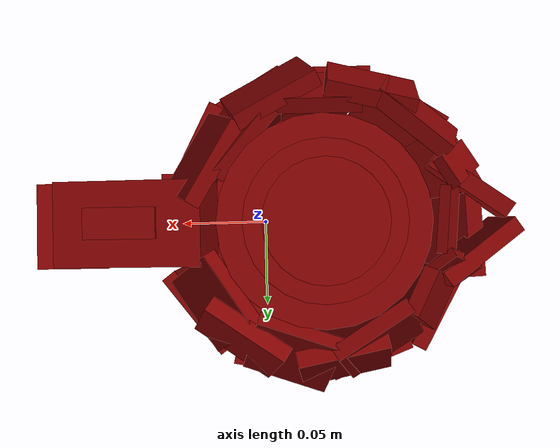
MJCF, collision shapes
<?xml version='1.0' encoding='UTF-8'?>
<mujoco model="model">
  <option timestep="0.002" gravity="0.0 0.0 -9.81"/>
  <compiler angle="radian"/>
  <asset>
    <mesh file="visuals/button_lid.obj" name="button_lid_vis"/>
    <mesh file="visuals/Body001.obj" name="Body001_vis"/>
    <mesh file="visuals/kettle_main.obj" name="kettle_main_vis"/>
    <mesh file="visuals/lid.obj" name="lid_vis"/>
    <mesh file="visuals/switch.obj" name="switch_vis"/>
    <texture file="visuals/T_BC001.png" name="Body001_material" type="2d"/>
    <material name="Body001_material" rgba="1 1 1 1.0" texture="Body001_material" shininess="0.5" specular="0.3103448502657381"/>
    <texture file="visuals/T_BC001.png" name="kettle_main_material" type="2d"/>
    <material name="kettle_main_material" rgba="1 1 1 1.0" texture="kettle_main_material" shininess="0.5" specular="0.3103448502657381"/>
    <texture file="visuals/T_BC001.png" name="button_lid_material" type="2d"/>
    <material name="button_lid_material" rgba="1 1 1 1.0" texture="button_lid_material" shininess="0.5" specular="0.3103448502657381"/>
    <texture file="visuals/T_BC001.png" name="lid_material" type="2d"/>
    <material name="lid_material" rgba="1 1 1 1.0" texture="lid_material" shininess="0.5" specular="0.3103448502657381"/>
    <texture file="visuals/T_BC001.png" name="switch_material" type="2d"/>
    <material name="switch_material" rgba="1 1 1 1.0" texture="switch_material" shininess="0.5" specular="0.3103448502657381"/>
  </asset>
  <default>
    <default class="visual">
      <geom conaffinity="0" contype="0" group="1" type="mesh"/>
    </default>
    <default class="collision">
      <geom group="0" rgba="0.5 0 0 0.5" density="1.0" solref="0.004 1" solimp="0.998 0.998 0.001"/>
    </default>
    <default class="spawn">
      <geom group="0" rgba="1 1 1 0.5" contype="0" conaffinity="0"/>
      <site group="0" rgba="1 1 1 0.5"/>
    </default>
    <default class="region">
      <geom group="1" conaffinity="0" contype="0" rgba="0 1 0 0" mass="0"/>
    </default>
  </default>
  <worldbody>
    <body>
      <body name="object">
        <geom mesh="Body001_vis" type="mesh" solimp="0.998 0.998 0.001" solref="0.001 1" friction="0.95 0.3 0.1" class="visual" material="Body001_material"/>
        <geom type="cylinder" pos="-0.02806802 0.00056461 -0.12007976" size="0.08009783178567886 0.012889089994132519" quat="7.549790126404332e-08 0.0 0.0 -1.0" class="collision"/>
        <body name="kettle_main">
          <geom mesh="kettle_main_vis" type="mesh" solimp="0.998 0.998 0.001" solref="0.001 1" friction="0.95 0.3 0.1" class="visual" material="kettle_main_material"/>
          <geom type="box" pos="-0.03416502 -0.07529872 -0.00901757" size="0.021697411313652992 0.004031777381896973 0.0879552885890007" quat="1.0 0.0 0.0 0.0" class="collision"/>
          <geom type="box" pos="-0.07562212 -0.05982093 -0.00901757" size="0.02169741690158844 0.004031796008348465 0.08795532584190369" quat="0.27820244431495667 0.0 0.0 0.960522472858429" class="collision"/>
          <geom type="box" pos="-0.10826935 0.00907945 -0.00901757" size="0.02169741876423359 0.004031796474009752 0.08795532584190369" quat="0.6909513473510742 0.0 0.0 0.7229012846946716" class="collision"/>
          <geom type="box" pos="-0.05324413 0.07102929 -0.00901757" size="0.02169741876423359 0.004031796474009752 0.08795532584190369" quat="0.9823753237724304 0.0 0.0 0.1869191825389862" class="collision"/>
          <geom type="box" pos="-0.00651009 0.07358636 -0.00901757" size="0.023957490921020508 0.004048802424222231 0.08795532584190369" quat="0.995302677154541 0.0 0.0 -0.09681202471256256" class="collision"/>
          <geom type="box" pos="0.03587086 0.04644932 -0.00901757" size="0.024502277374267578 0.004031796474009752 0.08795532584190369" quat="0.8964644074440002 0.0 0.0 -0.4431157410144806" class="collision"/>
          <geom type="box" pos="0.00852330 -0.06614739 -0.01009050" size="0.02169741876423359 0.004031796474009752 0.08795532584190369" quat="0.2657346725463867 0.0 0.0 -0.9640461802482605" class="collision"/>
          <geom type="box" pos="0.04989149 -0.00384221 0.01219022" size="0.02169741876423359 0.004031796474009752 0.06674753874540329" quat="0.6941568851470947 0.0 0.0 -0.7198237776756287" class="collision"/>
          <geom type="box" pos="-0.02665413 -0.06483731 0.09016734" size="0.02169741876423359 0.004031796008348465 0.017500348389148712" quat="7.261022005877749e-08 2.0680648304960414e-08 -0.2739235460758209 -0.9617514610290527" class="collision"/>
          <geom type="box" pos="0.01612690 -0.04426841 0.09039219" size="0.02169741876423359 0.004031796008348465 0.017500348389148712" quat="0.40188682079315186 0.11446435004472733 -0.2488613873720169 -0.8737578988075256" class="collision"/>
          <geom type="box" pos="-0.01234312 0.06592190 0.09343173" size="0.02169741876423359 0.004031795542687178 0.01750035025179386" quat="0.9043024182319641 0.3939497172832489 -0.06188849359750748 -0.15235024690628052" class="collision"/>
          <geom type="box" pos="0.02560257 0.03980858 0.09003274" size="0.02169741876423359 0.004031796008348465 0.017500348389148712" quat="0.8161525726318359 0.32853493094444275 -0.15068449079990387 -0.45083698630332947" class="collision"/>
          <geom type="box" pos="-0.07596134 -0.05108020 0.09243228" size="0.022838424891233444 0.004243816249072552 0.016412906348705292" quat="0.3305305242538452 0.06446421146392822 0.21881256997585297 0.9158138632774353" class="collision"/>
          <geom class="collision" type="box" pos="0.10272706 0.00069039 0.03070326" size="0.02169955149292946 0.018044065684080124 0.05260666832327843" quat="0.702663242816925 0.030843505635857582 -0.026440011337399483 -0.710361897945404" name="handle_main"/>
          <geom class="collision" type="box" pos="0.06654883 -0.00025206 0.07596178" size="0.021699553355574608 0.019013550132513046 0.038298796862363815" quat="0.5390055775642395 0.45427554845809937 -0.4571070373058319 -0.5423650741577148" name="handle_1"/>
          <geom type="box" pos="-0.05516748 0.06021357 0.09372632" size="0.02169741876423359 0.004031796008348465 0.017500348389148712" quat="0.9309446811676025 0.23488211631774902 0.07750339061021805 0.26863667368888855" class="collision"/>
          <geom type="box" pos="-0.10232215 -0.02810671 -0.00901757" size="0.02169741876423359 0.004031796474009752 0.08795532584190369" quat="0.503608226776123 0.0 0.0 0.8639321327209473" class="collision"/>
          <geom type="box" pos="-0.08811775 0.04768248 -0.00901757" size="0.02169741876423359 0.004031796474009752 0.08795532584190369" quat="0.857904851436615 0.0 0.0 0.5138086080551147" class="collision"/>
          <geom type="box" pos="0.03387794 -0.04154588 -0.01009050" size="0.02169741876423359 0.004031796474009752 0.08795532584190369" quat="0.5237988233566284 0.0 0.0 -0.8518419861793518" class="collision"/>
          <geom type="box" pos="-0.08124342 0.04019463 0.09372632" size="0.012414224445819855 0.003891986794769764 0.017361877486109734" quat="0.8187540769577026 0.23250412940979004 0.09030118584632874 0.5171356797218323" class="collision"/>
          <geom type="box" pos="-0.09562566 -0.02647270 0.09578604" size="0.008230204693973064 0.002693294547498226 0.016519809141755104" quat="0.14230182766914368 -0.45794159173965454 -0.8355329632759094 0.26818719506263733" class="collision"/>
          <geom type="box" pos="-0.09331391 0.02496385 0.09468774" size="0.008230204693973064 0.0026932943146675825 0.016519811004400253" quat="0.189413383603096 -0.910895586013794 -0.26446810364723206 0.2538670003414154" class="collision"/>
          <geom type="box" pos="-0.08962586 0.00124632 0.10104365" size="0.008230205625295639 0.0026932943146675825 0.016519809141755104" quat="0.34048619866371155 0.3929964005947113 0.5911062955856323 -0.6166168451309204" class="collision"/>
          <geom type="cylinder" pos="-0.02806802 0.00056461 -0.10038736" size="0.08009783178567886 0.0038796693552285433" quat="7.549790126404332e-08 0.0 0.0 -1.0" class="collision"/>
          <geom type="box" pos="-0.05371566 -0.06544316 0.09288393" size="0.022838424891233444 0.004243816249072552 0.016412906348705292" quat="0.11664082109928131 0.013730018399655819 0.22769729793071747 0.9666231870651245" class="collision"/>
          <geom type="box" pos="-0.00340128 -0.06448478 0.09288393" size="0.022838419303297997 0.004243816249072552 0.016412906348705292" quat="0.23359708487987518 0.06787916272878647 -0.2177773118019104 -0.9451972842216492" class="collision"/>
          <geom type="box" pos="0.03014164 -0.03174051 0.09288393" size="0.022838423028588295 0.004243816249072552 0.016412906348705292" quat="0.47627586126327515 0.1232883408665657 -0.19192320108413696 -0.8491918444633484" class="collision"/>
          <geom type="box" pos="0.01297086 0.05810659 0.09288393" size="0.022838421165943146 0.004243816249072552 0.016412906348705292" quat="0.9285897612571716 0.22127045691013336 -0.055442988872528076 -0.2927226722240448" class="collision"/>
          <geom type="box" pos="-0.03794250 0.06988654 0.09288393" size="0.022838421165943146 0.004243816249072552 0.016412906348705292" quat="0.9689041972160339 0.2252521961927414 0.036000244319438934 0.09586469829082489" class="collision"/>
          <geom type="box" pos="-0.10442936 -0.01621043 0.08253402" size="0.022838424891233444 0.004243816249072552 0.01641290821135044" quat="0.02621924690902233 0.9493038058280945 -0.3063584268093109 -0.06541700661182404" class="collision"/>
          <geom type="box" pos="-0.10442936 0.01697658 0.08608630" size="0.022838424891233444 0.004243816249072552 0.016412906348705292" quat="0.9493038058280945 -0.026219135150313377 -0.06541696190834045 0.3063584268093109" class="collision"/>
          <body name="button_lid">
            <joint axis="0.0 0.0 -1.0" pos="0.06989294 -0.00000030 0.09650262" limited="true" name="button_lid_joint" range="0.0 0.004" type="slide" damping="1" frictionloss="1" armature=".01" stiffness="0.05" springref="-2"/>
            <geom mesh="button_lid_vis" type="mesh" solimp="0.998 0.998 0.001" solref="0.001 1" friction="0.95 0.3 0.1" class="visual" material="button_lid_material"/>
            <geom class="collision" type="box" pos="0.07185165 -0.00065097 0.10126077" size="0.007869250141084194 0.000941446574870497 0.018445638939738274" quat="0.5333261489868164 0.4616522490978241 -0.4673389196395874 -0.5329490900039673" name="button_lid_main"/>
          </body>
          <body name="lid">
            <joint axis="0.0 1.0 0.0" pos="0.02387301 -0.00000016 0.10970461" limited="true" name="lid_joint" range="0.0 1.5707963267948966" type="hinge" damping="1" frictionloss="0.1" armature=".01" stiffness="0.05" springref="-6"/>
            <geom mesh="lid_vis" type="mesh" solimp="0.998 0.998 0.001" solref="0.001 1" friction="0.95 0.3 0.1" class="visual" material="lid_material"/>
            <geom class="collision" type="cylinder" pos="-0.02806802 0.00056461 0.11270932" size="0.051645420491695404 0.0017763280775398016" quat="1.0 0.0 0.0 0.0" name="lid_main"/>
            <geom class="collision" type="cylinder" pos="-0.02806802 0.00056461 0.12130977" size="0.038984138518571854 0.0013408476952463388" quat="1.0 0.0 0.0 0.0" name="lid_1"/>
            <geom class="collision" type="cylinder" pos="-0.02806802 0.00056461 0.12706695" size="0.02984461933374405 0.0010264964075759053" quat="1.0 0.0 0.0 0.0" name="lid_2"/>
          </body>
          <body name="switch">
            <joint axis="0.0 0.0 -1.0" pos="0.06458240 -0.00068523 -0.06734439" limited="true" name="switch_joint" range="0.0 0.01" type="slide" damping="1" frictionloss="1" armature=".01" stiffness="0.05" springref="-2"/>
            <geom mesh="switch_vis" type="mesh" solimp="0.998 0.998 0.001" solref="0.001 1" friction="0.95 0.3 0.1" class="visual" material="switch_material"/>
            <geom class="collision" type="box" pos="0.06819979 -0.00038287 -0.06697415" size="0.02208857052028179 0.010510086081922054 0.0030917772091925144" quat="1.0 0.0 0.0 0.0" name="switch_main"/>
          </body>
        </body>
        <geom class="region" name="reg_main" type="box" pos="0.0002395000000000036 0.0 0.0" size="0.12201587 0.07886464 0.13327437"/>
      </body>
    </body>
  </worldbody>
  <actuator>
    <motor name="button_lid_joint_actuator" joint="button_lid_joint" gear="0.5"/>
    <motor name="lid_joint_actuator" joint="lid_joint" gear="0.5"/>
    <motor name="switch_joint_actuator" joint="switch_joint" gear="0.5"/>
  </actuator>
</mujoco>
